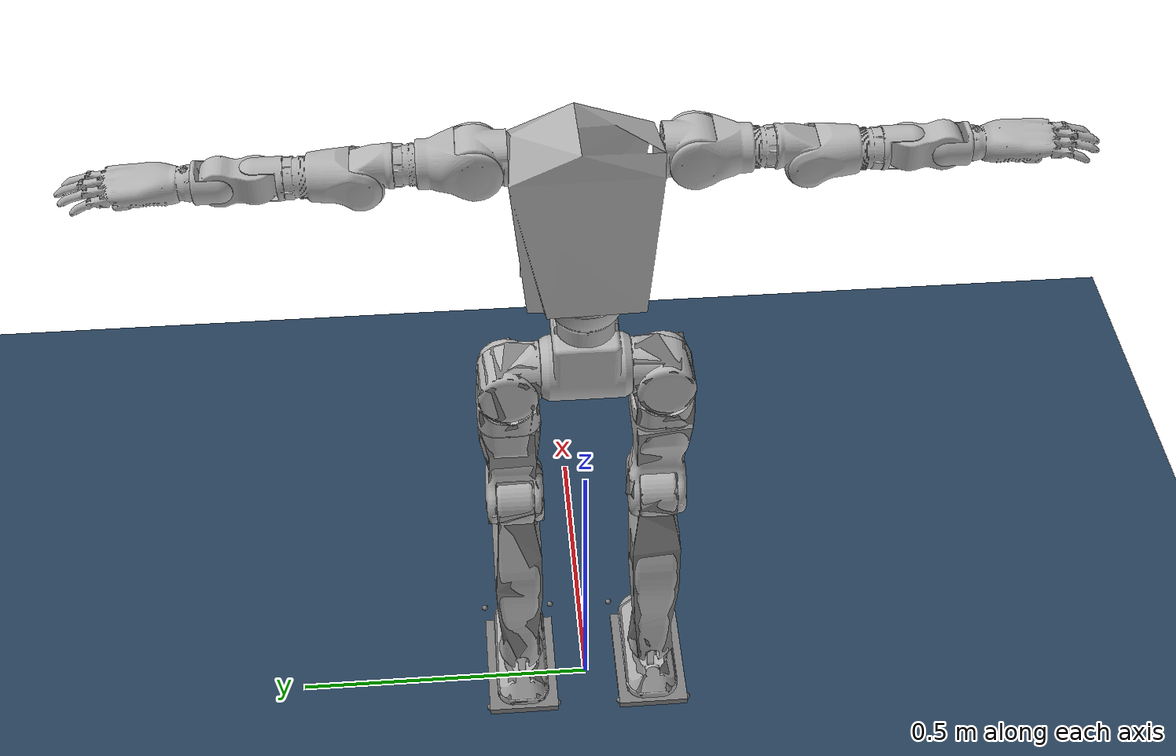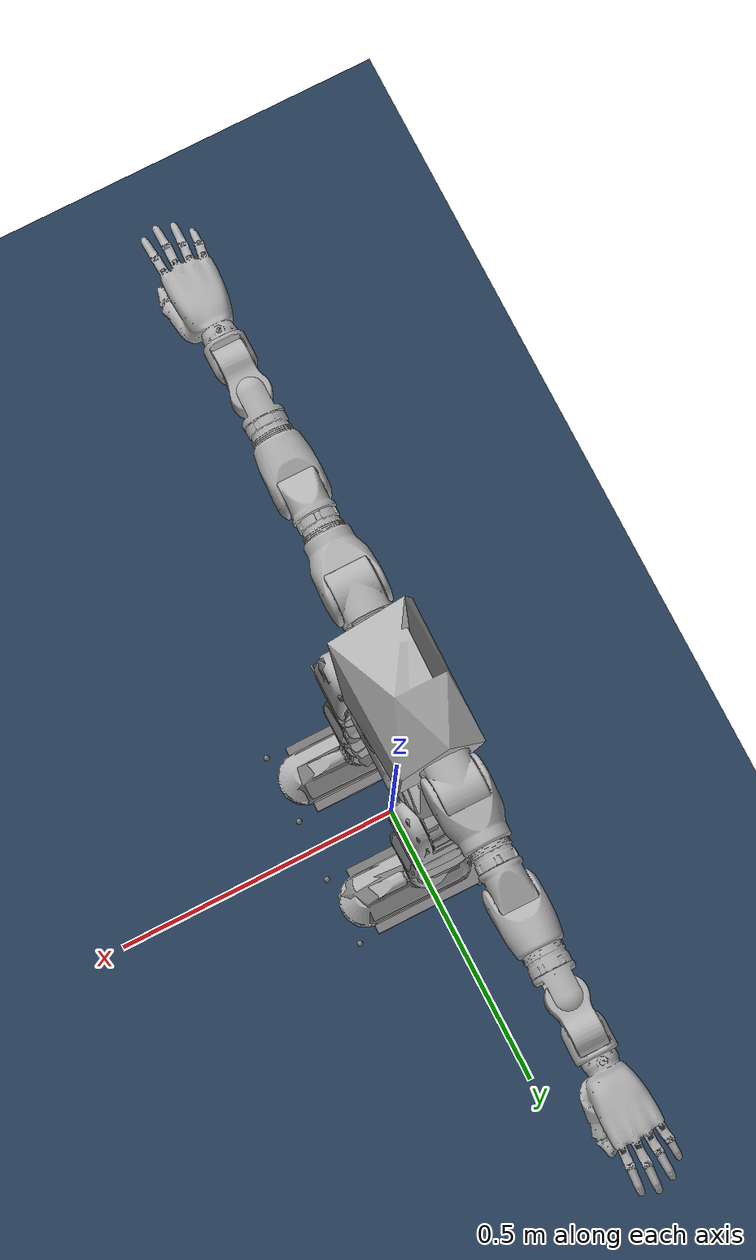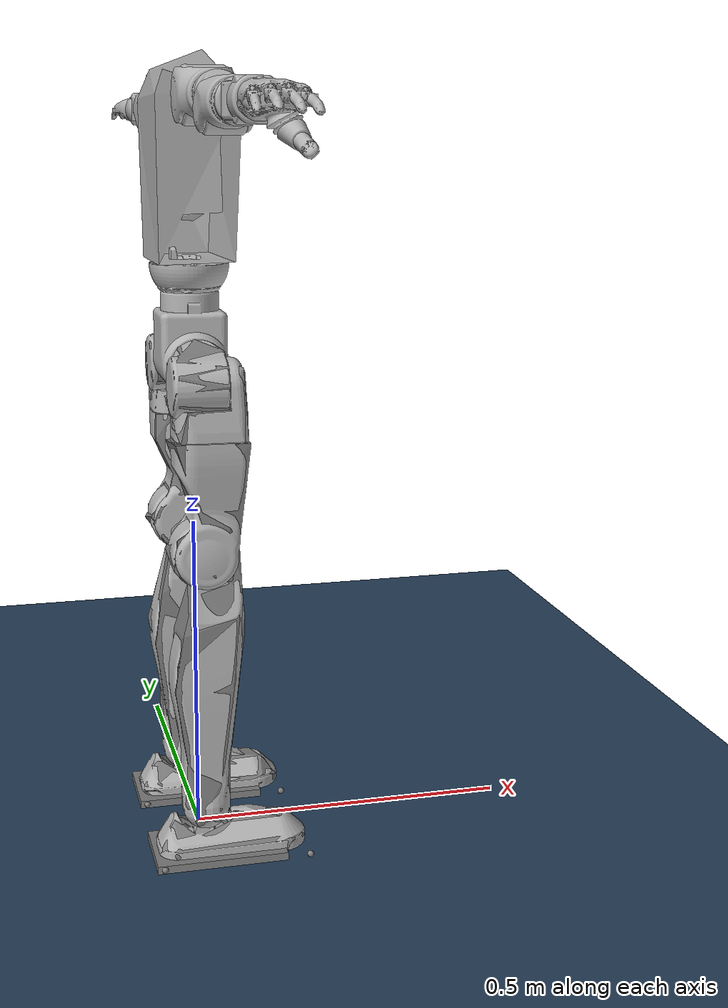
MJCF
<mujoco model="converted_robot scene">
  <include file="robot.xml"/>
  <statistic center="0 0 1" extent="1.8"/>

  <!-- 仿真求解器配置 - 优化稳定性 -->
  <option timestep="0.001" iterations="100" solver="Newton" tolerance="1e-10">
    <flag warmstart="enable" energy="enable" contact="enable"/>
  </option>

  <!-- 禁用自动重置 -->
  <size nconmax="500" njmax="1000"/>

  <!-- 初始姿态配置 -->
  <keyframe>
    <key name="home"
         qpos="0 0 0.665 1 0 0 0
               -0.707 0.062 -0.0553 -1.17 -0.458 0.0829
               0.706 -0.0633 0.054 1.16 0.451 -0.0835
               0 1.30 0 0 0 0 0 0
               0 1.30 0 0 0 0 0 0"
         ctrl="0 0 0 0 0 0
               0 0 0 0 0 0
               0 0 0
               0 0 0 0 0 0 0 0
               0 0 0 0 0 0 0 0"/>
  </keyframe>

  <visual>
    <headlight diffuse="0.6 0.6 0.6" ambient="0.3 0.3 0.3" specular="0 0 0"/>
    <rgba haze="0.15 0.25 0.35 1"/>
    <global azimuth="160" elevation="-20"/>
  </visual>

  <asset>
    <texture type="skybox" builtin="gradient" rgb1="0.3 0.5 0.7" rgb2="0 0 0" width="512" height="3072"/>
    <texture type="2d" name="groundplane" builtin="checker" mark="edge" rgb1="0.2 0.3 0.4" rgb2="0.1 0.2 0.3"
      markrgb="0.8 0.8 0.8" width="300" height="300"/>
    <material name="groundplane" texture="groundplane" texuniform="true" texrepeat="5 5" reflectance="0.2"/>
  </asset>

  <worldbody>
    <light pos="0 0 3.5" dir="0 0 -1" directional="true"/>
    <!-- 地面配置：contype=2(属于组2), conaffinity=1(与组1碰撞，即与机器人碰撞) -->
    <geom name="floor" pos="0 0 0" size="0 0 0.05" type="plane" material="groundplane" contype="2" conaffinity="1"/>
  </worldbody>

</mujoco>

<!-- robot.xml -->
<mujoco model="r2-1024">

  <compiler angle="radian" autolimits="true"/>

  <option iterations="2" ls_iterations="5" gravity="0.0 0.0 -9.81">
    <flag eulerdamp="disable" />
  </option>

  <statistic meansize="0.05"/>

  <default>
      <default class="r2">
        <joint damping="1.0" armature="0.1"/>
        <default class="visual">
            <geom type="mesh" contype="0" conaffinity="0" group="2" material="black"/>
        </default>
        <default class="r2foot">
          <site group="1" pos="0.014 0 -0.046" />
          <geom rgba="0.231373 0.380392 0.705882 1" />
        </default>
        <site size="0.01" rgba="0.5 0.5 0.5 0.3" group="4"/>
        <default class="collision">
          <geom group="1"/>
        </default>
      </default>
  </default>

  <worldbody>
    <body name="base_link" quat="1 0 0 0" pos="0 0 0.7536" childclass="r2">
      <freejoint/>
      <inertial pos="-0.0002 4e-05 -0.04522" quat="0.498303 0.499454 -0.500496 0.501741" mass="5"
        diaginertia="0.0490211 0.0445821 0.00824619"/>
      <geom name="base_link_visual" class="visual" mesh="base_link_base_link" material="default_material" />
      <body name="waist-yaw" pos="0 0 0.1015">
        <inertial pos="0.000838548932558386 1.9429471902685E-06 0.0186119972543407" mass="0.167524107737489" diaginertia="9.88251687847136e-05 0.000102644683208664 0.000183718897605441" />
        <joint name="waist-yaw" type="hinge" range="-2.35 2.35" axis="0 0 1" />
        <geom name="waist-yaw_visual" class="visual" mesh="waist-yaw_waist-yaw" material="default_material" />
        <body name="waist-roll" pos="0 0 0.0469999999999995">
          <inertial pos="1.97709520768918E-08 1.97091613064748E-08 2.31318830895555E-08" mass="0.0511904050675653" diaginertia="3.39482519018086e-06 5.66454429374261e-06 4.73575691209588e-06" />
          <joint name="waist-roll" type="hinge" range="-0.52 0.52" axis="-1 0 0" />
          <geom name="waist-roll_visual" class="visual" mesh="waist-roll_waist-roll" material="default_material" />
          <body name="waist-pitch">
            <inertial pos="0.00344100284916034 0.0033421324318141 0.178579205212244" mass="6.84868650679273" diaginertia="0.0455180072144121 0.0320278136152675 0.0239625384602924" />
            <joint name="waist-pitch" type="hinge" range="-0.52 0.52" axis="0 -0.999993041789322 0.00373046551240819" />
            <geom name="waist-pitch_visual" class="visual" mesh="waist-pitch_waist-pitch" material="default_material" />
            <body name="Rshoulder-pitch" pos="0.00124892699365971 -0.103096515714583 0.242383061761496">
              <inertial pos="1.19739327765281E-05 -0.037631766969166 0.00257001764547576" mass="0.351201296180657" diaginertia="0.000529028614216069 0.000352986817594136 0.000381088824596585" />
              <joint name="Rshoulder-pitch" type="hinge" range="-2.87 2.87" axis="0 0.999993041789322 -0.00373046551240969" />
              <geom name="Rshoulder-pitch_visual" class="visual" mesh="Rshoulder-pitch_Rshoulder-pitch" material="default_material" />
              <body name="Rshoulder-roll" pos="-0.00124892699365824 -0.0460005024348026 -4.88822667354949E-05">
                <inertial pos="-0.000812832414537328 -0.0271831429862336 0.00142268753344876" mass="0.901300574234884" diaginertia="0.000874742091802788 0.000766595366318081 0.00105432805094867" />
                <joint name="Rshoulder-roll" type="hinge" range="-1.34 2.79" axis="0.999986682697375 -1.92523928883499E-05 -0.00516081943538461" />
                <geom name="Rshoulder-roll_visual" class="visual" mesh="Rshoulder-roll_Rshoulder-roll" material="default_material" />
                <body name="Rarm-pitch" pos="0.00124892699365715 -0.0939985234157071 0.000571147438479858">
                  <inertial pos="-5.86523797540886E-05 -0.0480215847112014 -0.0115614509170335" mass="0.163656043089394" diaginertia="0.000205301785507928 0.000137025660099078 0.000154567593086099" />
                  <joint name="Rarm-pitch" type="hinge" range="-1.57 1.57" axis="0 0.999993041789322 -0.00373046551241809" />
                  <geom name="Rarm-pitch_visual" class="visual" mesh="Rarm-pitch_Rarm-pitch" material="default_material" />
                  <body name="Rarm-roll" pos="-0.00124892699365667 -0.0600749118698925 -0.019969050977966">
                    <inertial pos="0.00117500064437485 -0.0296883325386475 0.00611806709758506" mass="0.790024730889843" diaginertia="0.000626951373773776 0.000565474955147993 0.000724094109271216" />
                    <joint name="Rarm-roll" type="hinge" range="-2.09 2.09" axis="-0.999986682697375 1.92523928882734E-05 0.00516081943539328" />
                    <geom name="Rarm-roll_visual" class="visual" mesh="Rarm-roll_Rarm-roll" material="default_material" />
                    <body name="Rforearm-pitch" pos="0.00118699671361817 -0.0874688267955187 0.00851953486706497">
                      <inertial pos="-7.39438371644141E-12 -0.0332659563873272 0.000124095077057351" mass="0.0616964140219398" diaginertia="1.71013816255747e-05 1.4645711027657e-05 2.68440203486961e-05" />
                      <joint name="Rforearm-pitch" type="hinge" range="-1.57 1.57" axis="0 0.999993041789322 -0.00373046551242672" />
                      <geom name="Rforearm-pitch_visual" class="visual" mesh="Rforearm-pitch_Rforearm-pitch" material="default_material" />
                      <body name="Rforearm-yaw" pos="0 -0.0519996381730424 0.000193984206656894">
                        <inertial pos="-0.00144914299769784 -0.024023819187538 -0.00133242424970514" mass="0.286322539919696" diaginertia="0.000207156464271699 7.94674704834646e-05 0.000207083820030091" />
                        <joint name="Rforearm-yaw" type="hinge" range="-1.57 1.57" axis="0.00516085534561842 0.00373041583270884 0.999979724579362" />
                        <geom name="Rforearm-yaw_visual" class="visual" mesh="Rforearm-yaw_Rforearm-yaw" material="default_material" />
                        <body name="Rforearm-roll" pos="0 -0.0479996660058844 0.000179062344592917">
                          <inertial pos="-0.000432292829653728 -0.0218265392717949 -9.51317515698324E-05" mass="0.0776563326897135" diaginertia="2.75633138511378e-05 1.84792179561101e-05 1.89294300843364e-05" />
                          <joint name="Rforearm-roll" type="hinge" range="-2.09 2.09" axis="-0.999986682697376 1.92523927639293E-05 0.00516081943529982" />
                          <geom name="Rforearm-roll_visual" class="visual" mesh="Rforearm-roll_Rforearm-roll" material="default_material" />
                          <body name="Rwrist-pitch" pos="-0.000310603277652269 -0.0289997922319544 0.000109786488636632">
                            <inertial pos="0.000399588449917054 -0.099108422325107 0.00163681066572025" mass="0.0581113383823661" diaginertia="2.27805031940733e-05 1.16579826647684e-05 2.76365481980842e-05" />
                            <joint name="Rwrist-pitch" type="hinge" range="-1.57 1.57" axis="0 0.999993041789322 -0.00373046551231421" />
                            <geom name="Rwrist-pitch_visual" class="visual" mesh="Rwrist-pitch_Rwrist-pitch" material="default_material" />
                          </body>
                        </body>
                      </body>
                    </body>
                  </body>
                </body>
              </body>
            </body>
            <body name="Lshoulder-pitch" pos="0.00127140572076783 0.105918012627561 0.245887711508865">
              <inertial pos="-9.37455533417397E-06 0.0366339168984884 -0.00199140885891902" mass="0.351201337508422" diaginertia="0.000529028510877296 0.000353281271768694 0.000380794448638633" />
              <joint name="Lshoulder-pitch" type="hinge" range="-2.87 2.87" axis="0 -0.999993041789322 0.00373046551240926" />
              <geom name="Lshoulder-pitch_visual" class="visual" mesh="Lshoulder-pitch_Lshoulder-pitch" material="default_material" />
              <body name="Lshoulder-roll" pos="-2.24787271085117E-05 0.0449837042723494 -0.00445218798751273">
                <inertial pos="0.00207301104207318 0.0271920986739509 0.00097801408904552" mass="0.901300591228606" diaginertia="0.000874808646674644 0.000766264670712621 0.00105459222467771" />
                <joint name="Lshoulder-roll" type="hinge" range="-2.79 1.34" axis="-0.999986682697375 1.92523928881331E-05 0.00516081943538374" />
                <geom name="Lshoulder-roll_visual" class="visual" mesh="Lshoulder-roll_Lshoulder-roll" material="default_material" />
                <body name="Larm-pitch" pos="0 0.106999255471457 -0.000399159809829575">
                  <inertial pos="-6.25416723689237E-05 0.0349340834086484 -0.0118708978450517" mass="0.163656024444727" diaginertia="0.000205301678168692 0.000137463543125656 0.000154129771734942" />
                  <joint name="Larm-pitch" type="hinge" range="-1.57 1.57" axis="0 -0.999993041789322 0.00373046551243847" />
                  <geom name="Larm-pitch_visual" class="visual" mesh="Larm-pitch_Larm-pitch" material="default_material" />
                  <body name="Larm-roll" pos="-0.000103217106914702 0.0469250646474482 -0.0201749263706734">
                    <inertial pos="3.07237365987437E-05 0.0297324322639182 0.00570310540618657" mass="0.790024757738838" diaginertia="0.000626951454863792 0.000564548244316752 0.00072502073772359" />
                    <joint name="Larm-roll" type="hinge" range="-2.09 2.09" axis="0.999986682697375 -1.92523928882734E-05 -0.00516081943539824" />
                    <geom name="Larm-roll_visual" class="visual" mesh="Larm-roll_Larm-roll" material="default_material" />
                    <body name="Lforearm-pitch" pos="4.12868268756597E-05 0.101529137056791 0.00762119246809084">
                      <inertial pos="9.4264852867898E-11 0.0192660538330411 -7.18685468062419E-05" mass="0.0616964130134071" diaginertia="1.71013819680551e-05 1.46457108455345e-05 2.68440199012118e-05" />
                      <joint name="Lforearm-pitch" type="hinge" range="-1.57 1.57" axis="0 -0.999993041789322 0.00373046551240292" />
                      <geom name="Lforearm-pitch_visual" class="visual" mesh="Lforearm-pitch_Lforearm-pitch" material="default_material" />
                      <body name="Lforearm-yaw" pos="0 0.0379997355879942 -0.000141757689466171">
                        <inertial pos="0.00143438826285103 0.0240131539873873 -0.00152650752821093" mass="0.28632253924729" diaginertia="0.000207149926817268 7.9380835666588e-05 0.000207176993320116" />
                        <joint name="Lforearm-yaw" type="hinge" range="-1.57 1.57" axis="-0.00516085534580852 -0.00373041583267726 -0.999979724579361" />
                        <geom name="Lforearm-yaw_visual" class="visual" mesh="Lforearm-yaw_Lforearm-yaw" material="default_material" />
                        <body name="Lforearm-roll" pos="0 0.0479996660058964 -0.000179062344588921">
                          <inertial pos="0.000430442058502199 0.021825205255057 -0.000262424408970063" mass="0.0776563366714877" diaginertia="2.75628437300679e-05 1.8480308623422e-05 1.89288080879214e-05" />
                          <joint name="Lforearm-roll" type="hinge" range="-2.09 2.09" axis="-0.999986682697374 1.92523929177407E-05 0.00516081943549098" />
                          <geom name="Lforearm-roll_visual" class="visual" mesh="Lforearm-roll_Lforearm-roll" material="default_material" />
                          <body name="Lwrist-pitch" pos="0.000310603277656869 0.0289997922319544 -0.000109786488636687">
                            <inertial pos="0.00515818043207492 0.0895589413698149 -0.00833217517594909" mass="0.0804763862959201" diaginertia="3.68663903336892e-05 2.82436939984766e-05 4.58942499829067e-05" />
                            <joint name="Lwrist-pitch" type="hinge" range="-1.57 1.57" axis="0 -0.999993041789322 0.00373046551231349" />
                            <geom name="Lwrist-pitch_visual" class="visual" mesh="Lwrist-pitch_Lwrist-pitch" material="default_material" />
                          </body>
                        </body>
                      </body>
                    </body>
                  </body>
                </body>
              </body>
            </body>
          </body>
        </body>
      </body>
      <body name="Lhip-pitch" pos="0 0.0689999999999989 0">
        <inertial pos="-0.00254636309481921 0.0432466227241415 -0.0132087299961457" mass="0.386381137343126" diaginertia="0.000557023322800266 0.000420066199291086 0.00040739518569122" />
        <joint name="Lhip-pitch" type="hinge" range="-1.05 1.05" axis="0 1 0" />
        <geom name="Lhip-pitch_visual" class="visual" mesh="Lhip-pitch_Lhip-pitch" material="default_material" />
        <geom name="Lhip-pitch_collision" class="collision" type="mesh" mesh="Lhip-pitch_collision" contype="2" conaffinity="1" />
        <body name="Lhip-roll" pos="0.0320272336417868 0.0500000000000001 -0.0199563600201637">
          <inertial pos="-0.00651166348866415 0.000823734562451911 -0.0348813012196115" mass="0.212465071618444" diaginertia="0.00031004863568897 0.000338004110916466 0.000320623038936227" />
          <joint name="Lhip-roll" type="hinge" range="-2.05 2.05" axis="-0.999999070885153 0 -0.00136316867310442" />
          <geom name="Lhip-roll_visual" class="visual" mesh="Lhip-roll_Lhip-roll" material="default_material" />
          <geom name="Lhip-roll_collision" class="collision" type="mesh" mesh="Lhip-roll_collision" contype="2" conaffinity="1" />
          <body name="Lleg-yaw" pos="-0.0239113717374919 0 -0.0650326556556895">
            <inertial pos="-0.00304648888175686 -0.00214822476705481 -0.104161278316881" mass="0.561993600265959" diaginertia="0.00342882830435025 0.00329783254603732 0.000900819979760054" />
            <joint name="Lleg-yaw" type="hinge" range="-2.05 2.05" axis="0.00136316867310442 0 -0.999999070885153" />
            <geom name="Lleg-yaw_visual" class="visual" mesh="Lleg-yaw_Lleg-yaw" material="default_material" />
            <geom name="Lleg-yaw_collision" class="collision" type="mesh" mesh="Lleg-yaw_collision" contype="2" conaffinity="1" />
            <body name="Lknee-pitch" pos="-0.0117478026460974 -0.00500000000000012 -0.185016186137831">
              <inertial pos="-0.00034114773473138 8.91715773991553E-05 -0.109411813515231" mass="1.80581812965294" diaginertia="0.0258477371297394 0.0263068985117663 0.00182984789955674" />
              <joint name="Lknee-pitch" type="hinge" range="-2.05 2.05" axis="0 -1 0" />
              <geom name="Lknee-pitch_visual" class="visual" mesh="Lknee-pitch_Lknee-pitch" material="default_material" />
              <geom name="Lknee-pitch_collision" class="collision" type="mesh" mesh="Lknee-pitch_collision" contype="2" conaffinity="1" />
              <body name="Lankle-pitch" pos="0.0222129220563394 0 -0.412470103272612">
                <inertial pos="-2.64456067233798E-06 -2.43383233011762E-09 -0.00812720824388957" mass="0.0171591478812246" diaginertia="2.45582108116279e-06 3.26464904844395e-06 2.25510633303582e-06" />
                <joint name="Lankle-pitch" type="hinge" range="-2.05 2.05" axis="0 1 0" />
                <geom name="Lankle-pitch_visual" class="visual" mesh="Lankle-pitch_Lankle-pitch" material="default_material" />
                <geom name="Lankle-pitch_collision" class="collision" type="mesh" mesh="Lankle-pitch_collision" contype="2" conaffinity="1" />
                <body name="Lankle-roll" pos="0 0 -0.0149999999999999">
                  <inertial pos="0.0177048612304101 6.01478156170288E-08 -0.0261609815806904" mass="0.629303892913963" diaginertia="0.000363233257575956 0.00232893464645625 0.00261354084496983" />
                  <joint name="Lankle-roll" type="hinge" range="-2.05 2.05" axis="1 0 0" />
                  <geom name="Lankle-roll_visual" class="visual" mesh="Lankle-roll_Lankle-roll" material="default_material" />
                  <geom name="Lankle-roll_collision" class="collision" type="mesh" mesh="Lankle-roll_collision" contype="2" conaffinity="1" />
                  <geom name="foot_left_1" pos=".130 0.06 -0.046" size=".005" type="sphere"/>
                  <geom name="foot_left_2" pos=".130 -0.06 -0.046" size=".005" type="sphere"/>
                  <geom name="foot_left_3" pos="-0.094 0.06 -0.046" size=".005" type="sphere"/>
                  <geom name="foot_left_4" pos="-0.094 -0.06 -0.046" size=".005" type="sphere"/>
                  <geom class="collision" contype="6" type="box" size=".1 .06 .006" pos="-0.005 0 -.046"/>
                  <site name ="left_foot" pos="0 0 -0.046"/>
                </body>
              </body>
            </body>
          </body>
        </body>
      </body>
      <body name="Rhip-pitch" pos="0 -0.069000000000001 0">
        <inertial pos="-0.0025168889607323 -0.0466794286103524 -0.0170464249414737" mass="0.337531091535058" diaginertia="0.000472639978064759 0.000360017864797971 0.000358409876213602" />
        <joint name="Rhip-pitch" type="hinge" range="-1.05 1.05" axis="0 -1 0" />
        <geom name="Rhip-pitch_visual" class="visual" mesh="Rhip-pitch_Rhip-pitch" material="default_material" />
        <geom name="Rhip-pitch_collision" class="collision" type="mesh" mesh="Rhip-pitch_collision" contype="2" conaffinity="1" />
        <body name="Rhip-roll" pos="0.0321289328949669 -0.0499999999999999 -0.0201939142077688">
          <inertial pos="-0.00803774464637705 -0.00101303984157786 -0.0367626564178768" mass="0.604619876832841" diaginertia="0.000867240931618366 0.000954982060712569 0.000888304416437135" />
          <joint name="Rhip-roll" type="hinge" range="-2.05 2.05" axis="-0.999981854966748 0 0.00602409638554543" />
          <geom name="Rhip-roll_visual" class="visual" mesh="Rhip-roll_Rhip-roll" material="default_material" />
          <geom name="Rhip-roll_collision" class="collision" type="mesh" mesh="Rhip-roll_collision" contype="2" conaffinity="1" />
          <body name="Rleg-yaw" pos="-0.0243911307842633 0 -0.0648542422595855">
            <inertial pos="-0.00312326966809828 0.00213973651422342 -0.103905105276982" mass="1.51191680217784" diaginertia="0.00300966586461575 0.00260974676832353 0.00235519867991485" />
            <joint name="Rleg-yaw" type="hinge" range="-2.05 2.05" axis="-0.00602409638554532 0 -0.999981854966748" />
            <geom name="Rleg-yaw_visual" class="visual" mesh="Rleg-yaw_Rleg-yaw" material="default_material" />
            <geom name="Rleg-yaw_collision" class="collision" type="mesh" mesh="Rleg-yaw_collision" contype="2" conaffinity="1" />
            <body name="Pknee-pitch" pos="-0.0111142763810016 0.00499999999999955 -0.184936402204994">
              <inertial pos="-0.00115049944926864 8.99871313251588E-05 -0.109396083318006" mass="1.80573124403558" diaginertia="0.0258408754277981 0.0263028229689853 0.00183261634288706" />
              <joint name="Rknee-pitch" type="hinge" range="-2.05 2.05" axis="0 1 0" />
              <geom name="Pknee-pitch_visual" class="visual" mesh="Pknee-pitch_Pknee-pitch" material="default_material" />
              <geom name="Pknee-pitch_collision" class="collision" type="mesh" mesh="Pknee-pitch_collision" contype="2" conaffinity="1" />
              <body name="Rankle-pitch" pos="0.0191653024840886 0 -0.412622940686401">
                <inertial pos="-2.64456067249064E-06 -2.43383237175099E-09 -0.00812720824388957" mass="0.0171591478812247" diaginertia="2.4558210811628e-06 3.26464904844394e-06 2.25510633303582e-06" />
                <joint name="Rankle-pitch" type="hinge" range="-2.05 2.05" axis="0 -1 0" />
                <geom name="Rankle-pitch_visual" class="visual" mesh="Rankle-pitch_Rankle-pitch" material="default_material" />
                <geom name="Rankle-pitch_collision" class="collision" type="mesh" mesh="Rankle-pitch_collision" contype="2" conaffinity="1" />
                <body name="Rankle-roll" pos="0 0 -0.0149999999999999">
                  <inertial pos="0.01770486123041 6.01478156170288E-08 -0.0261609815806908" mass="0.62930389291396" diaginertia="0.000363233257575954 0.00232893464645625 0.00261354084496982" />
                  <joint name="Rankle-roll" type="hinge" range="-2.06 2.06" axis="1 0 0" />
                  <geom name="Rankle-roll_visual" class="visual" mesh="Rankle-roll_Rankle-roll" material="default_material" />
                  <geom name="Rankle-roll_collision" class="collision" type="mesh" mesh="Rankle-roll_collision" contype="2" conaffinity="1" />
                  <geom name="foot_right_1" pos=".130 0.06 -0.046" size=".005" type="sphere"/>
                  <geom name="foot_right_2" pos=".130 -0.06 -0.046" size=".005" type="sphere"/>
                  <geom name="foot_right_3" pos="-0.094 0.06 -0.046" size=".005" type="sphere"/>
                  <geom name="foot_right_4" pos="-0.094 -0.06 -0.046" size=".005" type="sphere"/>
                  <geom class="collision" contype="6" type="box" size=".1 .06 .006" pos="-0.005 0 -.046"/>
                  <site name ="right_foot" pos="0 0 -0.046"/>
                </body>
              </body>
            </body>
          </body>
        </body>
      </body>
    </body>
  </worldbody>

  <asset>
    <material name="default_material" rgba="0.7 0.7 0.7 1" />
    <mesh name="base_link_base_link" file="meshes/r2-1024/meshes/base_link.STL" />
    <mesh name="Rhip-pitch_Rhip-pitch" file="meshes/r2-1024/meshes/Rhip-pitch.STL" />
    <mesh name="Rhip-roll_Rhip-roll" file="meshes/r2-1024/meshes/Rhip-roll.STL" />
    <mesh name="Rleg-yaw_Rleg-yaw" file="meshes/r2-1024/meshes/Rleg-yaw.STL" />
    <mesh name="Pknee-pitch_Pknee-pitch" file="meshes/r2-1024/meshes/Pknee-pitch.STL" />
    <mesh name="Rankle-pitch_Rankle-pitch" file="meshes/r2-1024/meshes/Rankle-pitch.STL" />
    <mesh name="Rankle-roll_Rankle-roll" file="meshes/r2-1024/meshes/Rankle-roll.STL" />
    <mesh name="Lhip-pitch_Lhip-pitch" file="meshes/r2-1024/meshes/Lhip-pitch.STL" />
    <mesh name="Lhip-roll_Lhip-roll" file="meshes/r2-1024/meshes/Lhip-roll.STL" />
    <mesh name="Lleg-yaw_Lleg-yaw" file="meshes/r2-1024/meshes/Lleg-yaw.STL" />
    <mesh name="Lknee-pitch_Lknee-pitch" file="meshes/r2-1024/meshes/Lknee-pitch.STL" />
    <mesh name="Lankle-pitch_Lankle-pitch" file="meshes/r2-1024/meshes/Lankle-pitch.STL" />
    <mesh name="Lankle-roll_Lankle-roll" file="meshes/r2-1024/meshes/Lankle-roll.STL" />
    <mesh name="waist-yaw_waist-yaw" file="meshes/r2-1024/meshes/waist-yaw.STL" />
    <mesh name="waist-roll_waist-roll" file="meshes/r2-1024/meshes/waist-roll.STL" />
    <mesh name="waist-pitch_waist-pitch" file="meshes/r2-1024/meshes/waist-pitch.STL" />
    <mesh name="Rshoulder-pitch_Rshoulder-pitch" file="meshes/r2-1024/meshes/Rshoulder-pitch.STL" />
    <mesh name="Rshoulder-roll_Rshoulder-roll" file="meshes/r2-1024/meshes/Rshoulder-roll.STL" />
    <mesh name="Rarm-pitch_Rarm-pitch" file="meshes/r2-1024/meshes/Rarm-pitch.STL" inertia="shell" />
    <mesh name="Rarm-roll_Rarm-roll" file="meshes/r2-1024/meshes/Rarm-roll.STL" />
    <mesh name="Rforearm-pitch_Rforearm-pitch" file="meshes/r2-1024/meshes/Rforearm-pitch.STL" />
    <mesh name="Rforearm-yaw_Rforearm-yaw" file="meshes/r2-1024/meshes/Rforearm-yaw.STL" />
    <mesh name="Rforearm-roll_Rforearm-roll" file="meshes/r2-1024/meshes/Rforearm-roll.STL" />
    <mesh name="Rwrist-pitch_Rwrist-pitch" file="meshes/r2-1024/meshes/Rwrist-pitch.STL" />
    <mesh name="Lshoulder-pitch_Lshoulder-pitch" file="meshes/r2-1024/meshes/Lshoulder-pitch.STL" />
    <mesh name="Lshoulder-roll_Lshoulder-roll" file="meshes/r2-1024/meshes/Lshoulder-roll.STL" />
    <mesh name="Larm-pitch_Larm-pitch" file="meshes/r2-1024/meshes/Larm-pitch.STL" inertia="shell" />
    <mesh name="Larm-roll_Larm-roll" file="meshes/r2-1024/meshes/Larm-roll.STL" />
    <mesh name="Lforearm-pitch_Lforearm-pitch" file="meshes/r2-1024/meshes/Lforearm-pitch.STL" />
    <mesh name="Lforearm-yaw_Lforearm-yaw" file="meshes/r2-1024/meshes/Lforearm-yaw.STL" />
    <mesh name="Lforearm-roll_Lforearm-roll" file="meshes/r2-1024/meshes/Lforearm-roll.STL" />
    <mesh name="Lwrist-pitch_Lwrist-pitch" file="meshes/r2-1024/meshes/Lwrist-pitch.STL" />

    <!-- Collision meshes for legs -->
    <mesh name="Lhip-pitch_collision" file="collison_meshes/Lhip-pitch.STL" />
    <mesh name="Lhip-roll_collision" file="collison_meshes/Lhip-roll.STL" />
    <mesh name="Lleg-yaw_collision" file="collison_meshes/Lleg-yaw.STL" />
    <mesh name="Lknee-pitch_collision" file="collison_meshes/Lknee-pitch.STL" />
    <mesh name="Lankle-pitch_collision" file="collison_meshes/Lankle-pitch.STL" />
    <mesh name="Lankle-roll_collision" file="collison_meshes/Lankle-roll.STL" />
    <mesh name="Rhip-pitch_collision" file="collison_meshes/Rhip-pitch.STL" />
    <mesh name="Rhip-roll_collision" file="collison_meshes/Rhip-roll.STL" />
    <mesh name="Rleg-yaw_collision" file="collison_meshes/Rleg-yaw.STL" />
    <mesh name="Pknee-pitch_collision" file="collison_meshes/Pknee-pitch.STL" />
    <mesh name="Rankle-pitch_collision" file="collison_meshes/Rankle-pitch.STL" />
    <mesh name="Rankle-roll_collision" file="collison_meshes/Rankle-roll.STL" />
  </asset>

<actuator>
  <!--  腰部执行器  -->
  <motor joint="waist-yaw" name="waist_yaw" ctrlrange="-105 105"/>
  <motor joint="waist-roll" name="waist_roll" ctrlrange="-30 30"/>
  <motor joint="waist-pitch" name="waist_pitch" ctrlrange="-105 105"/>
  <!--  左臂执行器 - 转换为position控制器  -->
  <position kp="800" kv="40" joint="Lshoulder-pitch" name="Lshoulder_pitch_actuator" ctrlrange="-1.05 1.05"/>
  <position kp="800" kv="40" joint="Lshoulder-roll" name="Lshoulder_roll_actuator" ctrlrange="-1.05 1.05"/>
  <position kp="600" kv="30" joint="Larm-pitch" name="Larm_pitch_actuator" ctrlrange="-0.52 0.52"/>
  <position kp="600" kv="30" joint="Larm-roll" name="Larm_roll_actuator" ctrlrange="-0.52 0.52"/>
  <position kp="500" kv="25" joint="Lforearm-pitch" name="Lforearm_pitch_actuator" ctrlrange="-0.52 0.52"/>
  <position kp="500" kv="25" joint="Lforearm-yaw" name="Lforearm_yaw_actuator" ctrlrange="-0.52 0.52"/>
  <position kp="400" kv="20" joint="Lforearm-roll" name="Lforearm_roll_actuator" ctrlrange="-0.26 0.26"/>
  <position kp="400" kv="20" joint="Lwrist-pitch" name="Lwrist_pitch_actuator" ctrlrange="-0.26 0.26"/>
  <!--  右臂执行器 - 转换为position控制器  -->
  <position kp="800" kv="40" joint="Rshoulder-pitch" name="Rshoulder_pitch_actuator" ctrlrange="-1.05 1.05"/>
  <position kp="800" kv="40" joint="Rshoulder-roll" name="Rshoulder_roll_actuator" ctrlrange="-1.05 1.05"/>
  <position kp="600" kv="30" joint="Rarm-pitch" name="Rarm_pitch_actuator" ctrlrange="-0.52 0.52"/>
  <position kp="600" kv="30" joint="Rarm-roll" name="Rarm_roll_actuator" ctrlrange="-0.52 0.52"/>
  <position kp="500" kv="25" joint="Rforearm-pitch" name="Rforearm_pitch_actuator" ctrlrange="-0.52 0.52"/>
  <position kp="500" kv="25" joint="Rforearm-yaw" name="Rforearm_yaw_actuator" ctrlrange="-0.52 0.52"/>
  <position kp="400" kv="20" joint="Rforearm-roll" name="Rforearm_roll_actuator" ctrlrange="-0.26 0.26"/>
  <position kp="400" kv="20" joint="Rwrist-pitch" name="Rwrist_pitch_actuator" ctrlrange="-0.26 0.26"/>

  <motor joint="Lhip-pitch" name="left_hip_pitch" ctrlrange="-105 105"/>
  <motor joint="Lhip-roll" name="left_hip_roll" ctrlrange="-105 105"/>
  <motor joint="Lleg-yaw" name="left_leg_yaw" ctrlrange="-105 105"/>
  <motor joint="Lknee-pitch" name="left_knee" ctrlrange="-135 135"/>
  <motor joint="Lankle-pitch" name="left_ankle_pitch" ctrlrange="-30 30"/>
  <motor joint="Lankle-roll" name="left_ankle_roll" ctrlrange="-30 30"/>

  <motor joint="Rhip-pitch" name="right_hip_pitch" ctrlrange="-105 105"/>
  <motor joint="Rhip-roll" name="right_hip_roll" ctrlrange="-105 105"/>
  <motor joint="Rleg-yaw" name="right_leg_yaw" ctrlrange="-105 105"/>
  <motor joint="Rknee-pitch" name="right_knee" ctrlrange="-135 135"/>
  <motor joint="Rankle-pitch" name="right_ankle_pitch" ctrlrange="-30 30"/>
  <motor joint="Rankle-roll" name="right_ankle_roll" ctrlrange="-30 30"/>

</actuator>

</mujoco>
